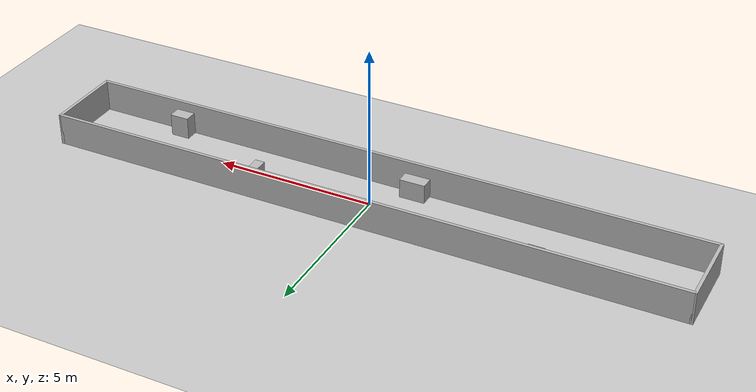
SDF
<?xml version="1.0" ?>
<sdf version="1.8">
  <world name="slam_corridor">
    <physics name="1ms" type="ignored">
      <max_step_size>0.001</max_step_size>
      <real_time_factor>1.0</real_time_factor>
    </physics>
    <plugin filename="gz-sim-physics-system"
            name="gz::sim::systems::Physics"/>
    <plugin filename="gz-sim-user-commands-system"
            name="gz::sim::systems::UserCommands"/>
    <plugin filename="gz-sim-scene-broadcaster-system"
            name="gz::sim::systems::SceneBroadcaster"/>
    <plugin filename="gz-sim-sensors-system"
            name="gz::sim::systems::Sensors">
      <render_engine>ogre2</render_engine>
    </plugin>
    <plugin filename="gz-sim-imu-system"
            name="gz::sim::systems::Imu"/>

    <light type="directional" name="sun">
      <pose>0 0 10 0 0 0</pose>
      <diffuse>0.8 0.8 0.8 1</diffuse>
      <specular>0.2 0.2 0.2 1</specular>
      <direction>-0.5 0.1 -0.9</direction>
    </light>

    <model name="ground_plane">
      <static>true</static>
      <link name="link">
        <collision name="collision">
          <geometry><plane><normal>0 0 1</normal><size>50 12</size></plane></geometry>
        </collision>
        <visual name="visual">
          <geometry><plane><normal>0 0 1</normal><size>50 12</size></plane></geometry>
          <material><diffuse>0.78 0.78 0.78 1</diffuse></material>
        </visual>
      </link>
    </model>

    <!-- 실제 평면도의 긴 복도를 단순화한 통제 환경이다.
         축척 복원이 아닌 반복 벽·왕복·폐루프 조건 재현이 목적이다. -->
    <model name="wall_north">
      <static>true</static><pose>0 1.2 0.5 0 0 0</pose>
      <link name="link">
        <collision name="collision"><geometry><box><size>20 0.1 1</size></box></geometry></collision>
        <visual name="visual"><geometry><box><size>20 0.1 1</size></box></geometry></visual>
      </link>
    </model>
    <model name="wall_south">
      <static>true</static><pose>0 -1.2 0.5 0 0 0</pose>
      <link name="link">
        <collision name="collision"><geometry><box><size>20 0.1 1</size></box></geometry></collision>
        <visual name="visual"><geometry><box><size>20 0.1 1</size></box></geometry></visual>
      </link>
    </model>
    <model name="wall_west">
      <static>true</static><pose>-10 0 0.5 0 0 0</pose>
      <link name="link">
        <collision name="collision"><geometry><box><size>0.1 2.5 1</size></box></geometry></collision>
        <visual name="visual"><geometry><box><size>0.1 2.5 1</size></box></geometry></visual>
      </link>
    </model>
    <model name="wall_east">
      <static>true</static><pose>10 0 0.5 0 0 0</pose>
      <link name="link">
        <collision name="collision"><geometry><box><size>0.1 2.5 1</size></box></geometry></collision>
        <visual name="visual"><geometry><box><size>0.1 2.5 1</size></box></geometry></visual>
      </link>
    </model>

    <!-- 서로 다른 위치·측면의 돌출부가 반복 복도의 대칭을 깨는 기준물이 된다. -->
    <model name="feature_north_west">
      <static>true</static><pose>-5.5 1.0 0.4 0 0 0</pose>
      <link name="link">
        <collision name="collision"><geometry><box><size>0.5 0.3 0.8</size></box></geometry></collision>
        <visual name="visual"><geometry><box><size>0.5 0.3 0.8</size></box></geometry></visual>
      </link>
    </model>
    <model name="feature_south_mid">
      <static>true</static><pose>-1.0 -0.95 0.3 0 0 0</pose>
      <link name="link">
        <collision name="collision"><geometry><box><size>0.8 0.4 0.6</size></box></geometry></collision>
        <visual name="visual"><geometry><box><size>0.8 0.4 0.6</size></box></geometry></visual>
      </link>
    </model>
    <model name="feature_north_east">
      <static>true</static><pose>3.2 0.95 0.5 0 0 0</pose>
      <link name="link">
        <collision name="collision"><geometry><box><size>0.3 0.4 1.0</size></box></geometry></collision>
        <visual name="visual"><geometry><box><size>0.3 0.4 1.0</size></box></geometry></visual>
      </link>
    </model>
    <model name="feature_south_east">
      <static>true</static><pose>7.0 -0.95 0.35 0 0 0</pose>
      <link name="link">
        <collision name="collision"><geometry><box><size>0.6 0.4 0.7</size></box></geometry></collision>
        <visual name="visual"><geometry><box><size>0.6 0.4 0.7</size></box></geometry></visual>
      </link>
    </model>
  </world>
</sdf>
